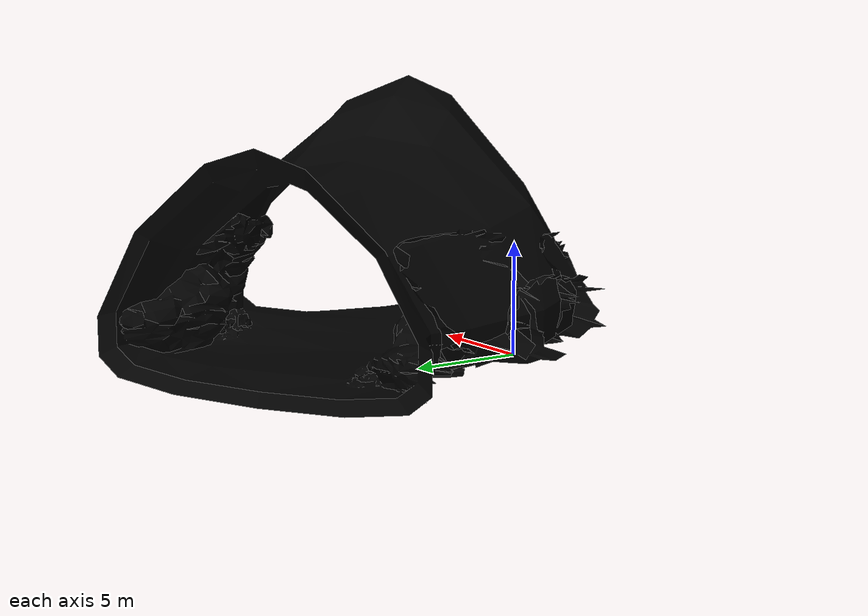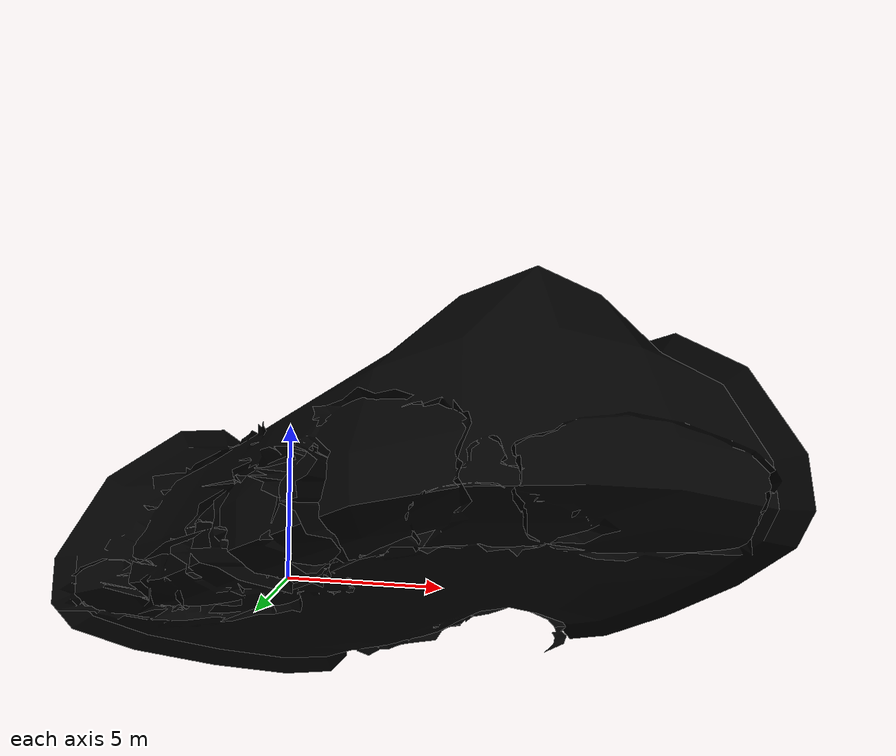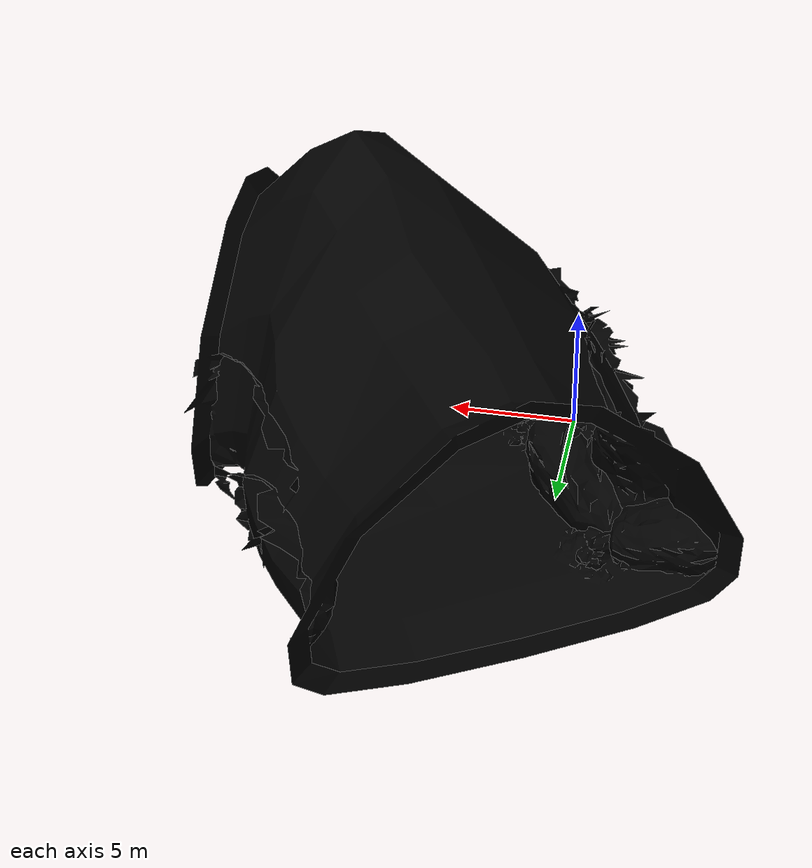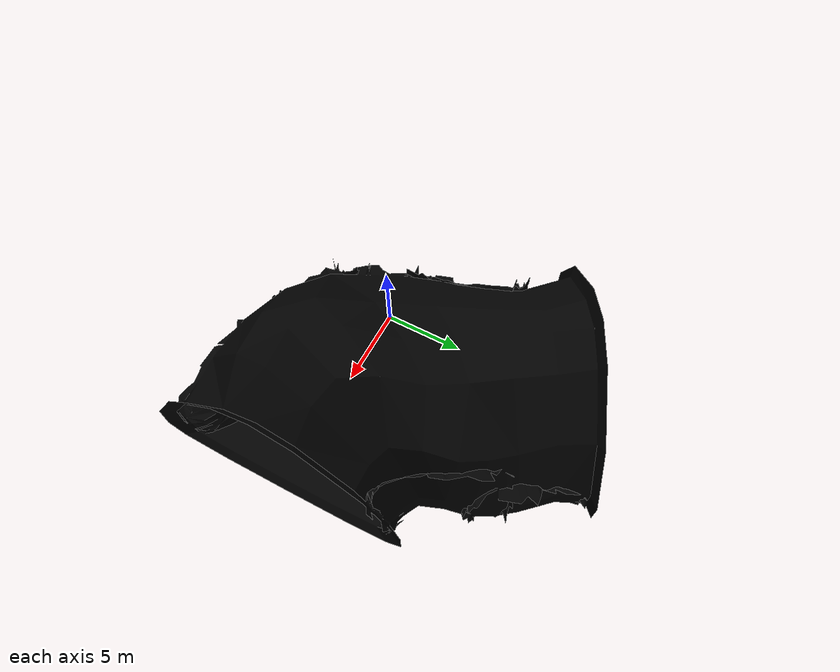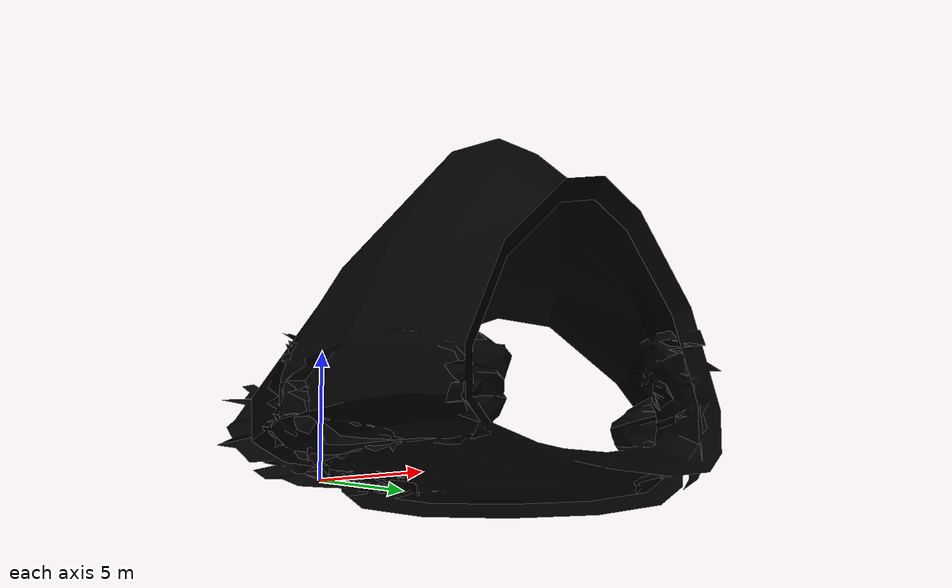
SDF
<sdf version="1.6">
  <model name="Cave Corner 30 D Lights Type B">
    <include>
      <name>cave_corner_30_d</name>
      <uri>model://Cave Corner 30 D Type B</uri>
    </include>
    <static>true</static>
    <link name="lights">
      <light name="spot_light1" type="spot">
        <pose>1.75 6.0 3.5 0 0 0</pose>
        <diffuse>0 0 0 1</diffuse>
        <specular>0 0 0 1</specular>
        <attenuation>
          <range>20</range>
          <linear>0.2</linear>
          <constant>0.7</constant>
          <quadratic>0.02</quadratic>
        </attenuation>
        <spot>
          <inner_angle>2.0</inner_angle>
          <outer_angle>3.1</outer_angle>
          <falloff>1.0</falloff>
        </spot>
        <cast_shadows>false</cast_shadows>
      </light>

      <light name="spot_light2" type="spot">
        <pose>6.5 0 4.5 0 0 0</pose>
        <diffuse>0 0 0 1</diffuse>
        <specular>0 0 0 1</specular>
        <attenuation>
          <range>20</range>
          <linear>0.2</linear>
          <constant>0.7</constant>
          <quadratic>0.02</quadratic>
        </attenuation>
        <spot>
          <inner_angle>2.0</inner_angle>
          <outer_angle>3.1</outer_angle>
          <falloff>1.0</falloff>
        </spot>
        <cast_shadows>false</cast_shadows>
      </light>
    </link>
  </model>
</sdf>

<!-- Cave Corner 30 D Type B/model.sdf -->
<sdf version="1.6">
  <model name="Cave Corner 30 D Type B">
    <static>true</static>
    <link name="base_link">
      <collision name="collision">
        <pose>0 0 0 0 0 0</pose>
        <geometry>
          <mesh>
            <uri>meshes/corner30deg.dae</uri>
            <scale>1.0 1.0 1.0</scale>
          </mesh>
        </geometry>
      </collision>
      <visual name="CaveWall_visual">
        <geometry>
          <mesh>
            <submesh>
              <name>CaveWall</name>
              <center>false</center>
            </submesh>
            <uri>meshes/corner30deg.dae</uri>
            <scale>1.0 1.0 1.0</scale>
          </mesh>
        </geometry>
        <material>
          <diffuse>0 0 0 1</diffuse>
          <specular>0 0 0 1</specular>
          <pbr>
            <metal>
              <albedo_map>model://Cave Corner 30 D Type B/materials/textures/CaveWall_Albedo.png</albedo_map>
              <normal_map>model://Cave Corner 30 D Type B/materials/textures/CaveWall_Normal.png</normal_map>
              <roughness_map>model://Cave Corner 30 D Type B/materials/textures/CaveWall_Roughness.png</roughness_map>
            </metal>
          </pbr>

          <script>
            <uri>materials/scripts/</uri>
            <uri>materials/textures/</uri>
            <name>CaveTile/CaveWall_Diffuse</name>
          </script>
        </material>
      </visual>
      <visual name="StriatedRock_visual">
        <geometry>
          <mesh>
            <uri>meshes/corner30deg.dae</uri>
            <submesh>
              <name>StriatedRock</name>
              <center>false</center>
            </submesh>
            <scale>1.0 1.0 1.0</scale>
          </mesh>
        </geometry>
        <material>
          <diffuse>0 0 0 1</diffuse>
          <specular>0 0 0 1</specular>
          <pbr>
            <metal>
              <albedo_map>model://Cave Corner 30 D Type B/materials/textures/StriatedRock_Albedo.png</albedo_map>
              <normal_map>model://Cave Corner 30 D Type B/materials/textures/StriatedRock_Normal.png</normal_map>
              <roughness_map>model://Cave Corner 30 D Type B/materials/textures/StriatedRock_Roughness.png</roughness_map>
            </metal>
          </pbr>

          <script>
            <uri>materials/scripts/</uri>
            <uri>materials/textures/</uri>
            <name>CaveTile/StriatedRock_Diffuse</name>
          </script>
        </material>
      </visual>
      <visual name="RockPile_visual">
        <geometry>
          <mesh>
            <uri>meshes/corner30deg.dae</uri>
            <submesh>
              <name>RockPile</name>
              <center>false</center>
            </submesh>
            <scale>1.0 1.0 1.0</scale>
          </mesh>
        </geometry>
        <material>
          <diffuse>0 0 0 1</diffuse>
          <specular>0 0 0 1</specular>
          <pbr>
            <metal>
              <albedo_map>model://Cave Corner 30 D Type B/materials/textures/RockPile_Albedo.png</albedo_map>
              <normal_map>model://Cave Corner 30 D Type B/materials/textures/RockPile_Normal.png</normal_map>
              <roughness_map>model://Cave Corner 30 D Type B/materials/textures/RockPile_Roughness.png</roughness_map>
            </metal>
          </pbr>

          <script>
            <uri>materials/scripts/</uri>
            <uri>materials/textures/</uri>
            <name>CaveTile/RockPile_Diffuse</name>
          </script>
        </material>
      </visual>

    </link>
  </model>
</sdf>
